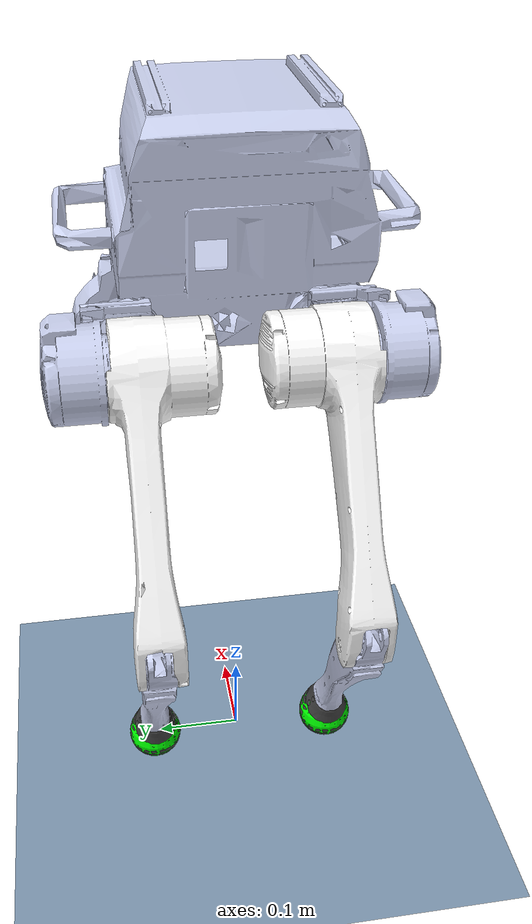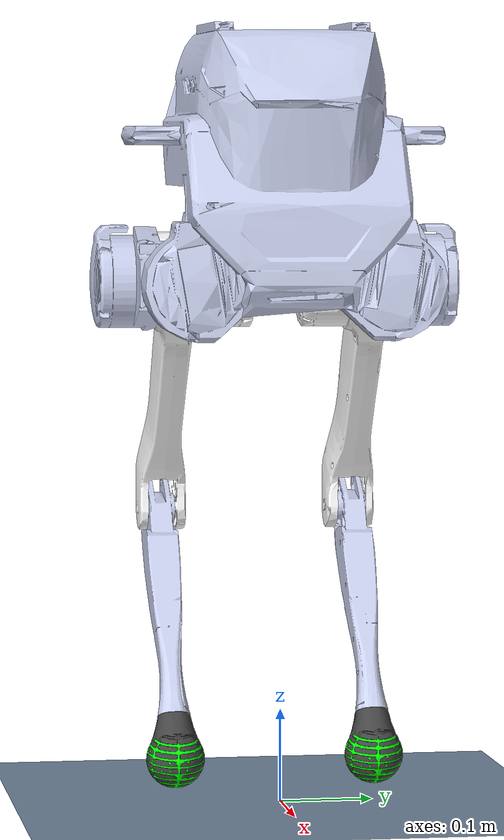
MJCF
<mujoco model="pointfoot">
    <compiler angle="radian" meshdir="../meshes/" />
    <size njmax="500" nconmax="100" />

    <default>
        <light castshadow="false" diffuse="1 1 1" />
        <camera fovy="60"/>
        <default class="visual">
            <geom contype="0" conaffinity="0" group="1" type="mesh" rgba="0.9 0.9 0.9 1.0"/>
        </default>
        <joint armature="0.01" damping="0.01"/>
        <geom contype="1" conaffinity="1" condim="3" friction="0.6 0.005 0.0001" rgba="0.5 0.6 0.7 0.0" margin="0.001" group="0" />
    </default>
    <visual>
        <rgba com="0.502 1.0 0 0.5" contactpoint="1.0 1.0 0.6 0.4" contactforce="0.2 0.98 0.2 0.8"/>
        <scale com="0.2" forcewidth="0.05" contactwidth="0.10" contactheight="0.04"/>
    </visual>

    <asset>
        <mesh name="base_Link" file="base_Link_.stl" />
        <mesh name="abad_L_Link" file="abad_L_Link_.stl" />
        <mesh name="hip_L_Link" file="hip_L_Link_.stl" />
        <mesh name="knee_L_Link" file="knee_L_Link_.stl" />
        <mesh name="foot_L_Link" file="foot_L_Link_.stl" />
        <mesh name="abad_R_Link" file="abad_R_Link_.stl" />
        <mesh name="hip_R_Link" file="hip_R_Link_.stl" />
        <mesh name="knee_R_Link" file="knee_R_Link_.stl" />
        <mesh name="foot_R_Link" file="foot_R_Link_.stl" />
    </asset>

    <asset>
        <texture type='skybox' builtin='gradient' width='512' height='512' rgb1="1.0 1.0 1.0" rgb2="1.0 1.0 1.0"/>
        <texture name="texplane" type="2d" builtin="checker" rgb1="0.35 0.35 0.35" rgb2="0.55 0.55 0.55" width="512" height="512" mark="cross" markrgb=".8 .8 .8"/>
        <material name="matplane" reflectance="0.0" texture="texplane" texrepeat="1 1" texuniform="true"/>
    </asset>
        <option timestep="0.001"/>

    <worldbody>
        <geom name="floor" rgba="0.5 0.6 0.7 1" pos="0 0 0" size="0 0 0.25" type="plane" material="matplane" condim="3"/>
        <camera name="track" mode="trackcom" pos="0 -2.3 1.6" xyaxes="1 0 0 0 0.707 0.707"/>
        <light directional="true" diffuse=".8 .8 .8" pos="0 0 10" dir="0 0 -10"/>

        <body name="base_Link" pos="0 0 0.65">
            <inertial pos="0.0281935 0.00460718 0.00936821" quat="0.968969 0.00354468 -0.247157 0.000702694" mass="9.577" diaginertia="0.153 0.111209 0.0819629" />
            <joint type="free" limited="false" damping="0.0000" stiffness="0.0000" armature="0"/>
            <site name="imu" pos="0 0 0"/>
            <geom class="visual" rgba="0.79216 0.81961 0.93333 1" mesh="base_Link" />
            <geom name="base_collision" size="0.125 0.13 0.09" pos="0.01 0 0.1" type="box" rgba="0 0 1 0"/>

            <body name="abad_L_Link" pos="0.039 0.1095 -0.08725">
                <inertial pos="-0.067703 0.044697 0.000863" quat="0.592352 0.566903 0.407791 0.401805" mass="1.56" diaginertia="0.00273065 0.00224784 0.00148073" />
                <joint name="abad_L_Joint" pos="0 0 0" axis="1 0 0" limited="true" range="-0.38397 1.39626" />
                <geom class="visual" rgba="0.79216 0.81961 0.93333 1" mesh="abad_L_Link" />
                <geom name="abad_L_collision" size="0.05 0.025" pos="-0.08 0 0" quat="0.707388 0.706825 0 0" type="cylinder" rgba="0 0 1 0" />

                <body name="hip_L_Link" pos="-0.077 0.0205 0">
                    <inertial pos="-0.031048 -0.047035 -0.04462" quat="0.839043 0.195444 0.218045 0.458547" mass="2.388" diaginertia="0.0274784 0.0271407 0.00290771" />
                    <joint name="hip_L_Joint" pos="0 0 0" axis="0 1 0" limited="true" range="-1.01229 1.39626" />
                    <geom class="visual" rgba="1 1 1 1" mesh="hip_L_Link" />
                    <geom name="hip_L_collision" size="0.035 0.09" pos="-0.1 -0.02 -0.14" quat="0.965093 0 0.261909 0" type="cylinder" rgba="0 0 1 0" />

                    <body name="knee_L_Link" pos="-0.15 -0.0205 -0.25981">
                        <inertial pos="0.0833218 0.00117237 -0.136768" quat="0.667013 -0.193353 -0.18177 0.696181" mass="0.693001" diaginertia="0.00867132 0.00860013 0.000223634" />
                        <joint name="knee_L_Joint" pos="0 0 0" axis="0 -1 0" limited="true" range="-0.872665 1.36136" />
                        <geom class="visual" rgba="0.79216 0.81961 0.93333 1" mesh="knee_L_Link" />
                        <geom name="knee_L_collision" size="0.015 0.13" pos="0.078 0 -0.12" quat="0.962425 0 -0.271547 0" type="cylinder" rgba="0 0 1 0"/>

                        <geom class="visual" pos="0.150 0 -0.2598" rgba="0.26667 0.26667 0.26667 1" mesh="foot_L_Link" />
                        <geom name="foot_L_collision" type="sphere" pos="0.150 0 -0.2598" size="0.032" rgba="0 0 1 0" />
                        <site name="foot_L_contact" size="0.032" pos="0.150 0 -0.2598" rgba="0 1 0 1"/>
                    </body>
                </body>
            </body>

            <body name="abad_R_Link" pos="0.039 -0.1095 -0.08725">
                <inertial pos="-0.067703 -0.044697 0.000863" quat="0.401805 0.407791 0.566903 0.592352" mass="1.56" diaginertia="0.00273065 0.00224784 0.00148073" />
                <joint name="abad_R_Joint" pos="0 0 0" axis="1 0 0" limited="true" range="-1.39626 0.38397" />
                <geom class="visual" rgba="0.79216 0.81961 0.93333 1" mesh="abad_R_Link" />
                <geom name="abad_R_collision" size="0.05 0.025" pos="-0.08 0 0" quat="0.707388 0.706825 0 0" type="cylinder" rgba="0 0 1 0" />

                <body name="hip_R_Link" pos="-0.077 -0.0205 0">
                    <inertial pos="-0.031048 0.047035 -0.04462" quat="0.458547 0.218045 0.195444 0.839043" mass="2.388" diaginertia="0.0274784 0.0271407 0.00290771" />
                    <joint name="hip_R_Joint" pos="0 0 0" axis="0 -1 0" limited="true" range="-1.39626 1.01229" />
                    <geom class="visual" rgba="1 1 1 1" mesh="hip_R_Link" />
                    <geom name="hip_R_collision" size="0.035 0.09" pos="-0.1 0.02 -0.14" quat="0.965093 0 0.261909 0" type="cylinder" rgba="0 0 1 0" />

                    <body name="knee_R_Link" pos="-0.15 0.0205 -0.25981">
                        <inertial pos="0.0819947 -0.00120916 -0.13312" quat="0.694719 -0.1848 -0.195986 0.666936" mass="0.672001" diaginertia="0.00834937 0.00828142 0.000220425" />
                        <joint name="knee_R_Joint" pos="0 0 0" axis="0 1 0" limited="true" range="-1.36136 0.872665" />
                        <geom class="visual" rgba="0.79216 0.81961 0.93333 1" mesh="knee_R_Link" />
                        <geom name="knee_R_collision" size="0.015 0.13" pos="0.078 0 -0.12" quat="0.962425 0 -0.271547 0" type="cylinder" rgba="0 0 1 0"/>

                        <geom class="visual" pos="0.150 0 -0.2598" rgba="0.26667 0.26667 0.26667 1" mesh="foot_R_Link" />
                        <geom name="foot_R_collision" type="sphere" pos="0.150 0 -0.2598" size="0.032" rgba="0 0 1 0" />
                        <site name="foot_R_contact" size="0.032" pos="0.150 0 -0.2598" rgba="0 1 0 1"/>
                    </body>
                </body>
            </body>
        </body>
    </worldbody>

    <actuator>
        <motor name="abad_L_Joint"  gear="1"  joint="abad_L_Joint" ctrllimited='true' ctrlrange='-80 80'/>
        <motor name="hip_L_Joint"   gear="1"  joint="hip_L_Joint" ctrllimited='true' ctrlrange='-80 80'/>
        <motor name="knee_L_Joint"  gear="1"  joint="knee_L_Joint" ctrllimited='true' ctrlrange='-80 80'/>
        <motor name="abad_R_Joint"  gear="1"  joint="abad_R_Joint" ctrllimited='true' ctrlrange='-80 80' />
        <motor name="hip_R_Joint"   gear="1"  joint="hip_R_Joint" ctrllimited='true' ctrlrange='-80 80' />
        <motor name="knee_R_Joint"  gear="1"  joint="knee_R_Joint" ctrllimited='true' ctrlrange='-80 80'/>
    </actuator>

    <sensor>
        <framequat name="quat" objtype="site" objname="imu"/>
        <gyro name="gyro" site="imu"/>
        <accelerometer name="acc" site="imu"/>

        <jointpos name="abad_L_Joint"    joint="abad_L_Joint" />
        <jointpos name="hip_L_Joint"     joint="hip_L_Joint" />
        <jointpos name="knee_L_Joint"    joint="knee_L_Joint" />
        <jointpos name="abad_R_Joint"    joint="abad_R_Joint" />
        <jointpos name="hip_R_Joint"     joint="hip_R_Joint" />
        <jointpos name="knee_R_Joint"    joint="knee_R_Joint" />

        <jointvel name="abad_L_Joint_vel"    joint="abad_L_Joint" />
        <jointvel name="hip_L_Joint_vel"     joint="hip_L_Joint" />
        <jointvel name="knee_L_Joint_vel"    joint="knee_L_Joint" />
        <jointvel name="abad_R_Joint_vel"    joint="abad_R_Joint" />
        <jointvel name="hip_R_Joint_vel"     joint="hip_R_Joint" />
        <jointvel name="knee_R_Joint_vel"    joint="knee_R_Joint" />

        <touch name="foot_L_collision" site="foot_L_contact"/>
        <touch name="foot_R_collision" site="foot_R_contact"/>
    </sensor>

</mujoco>
